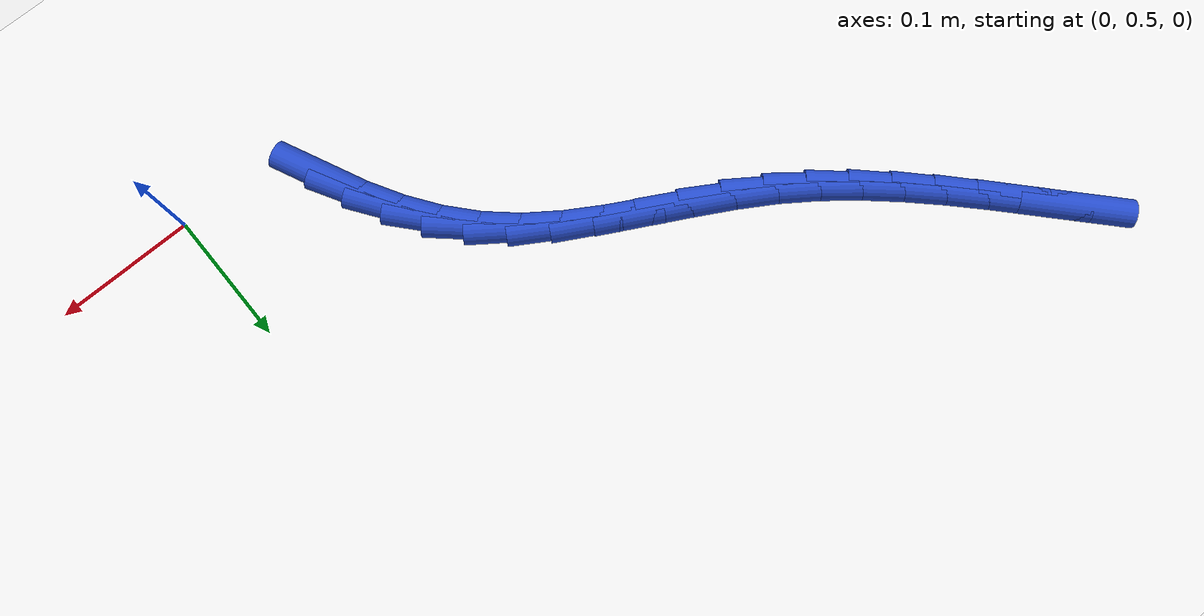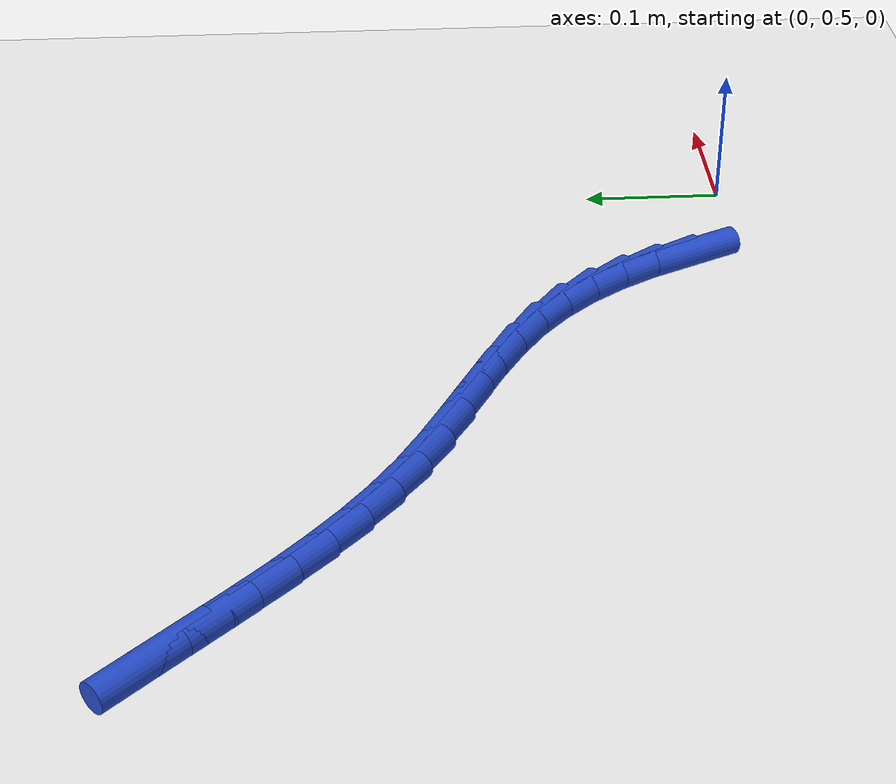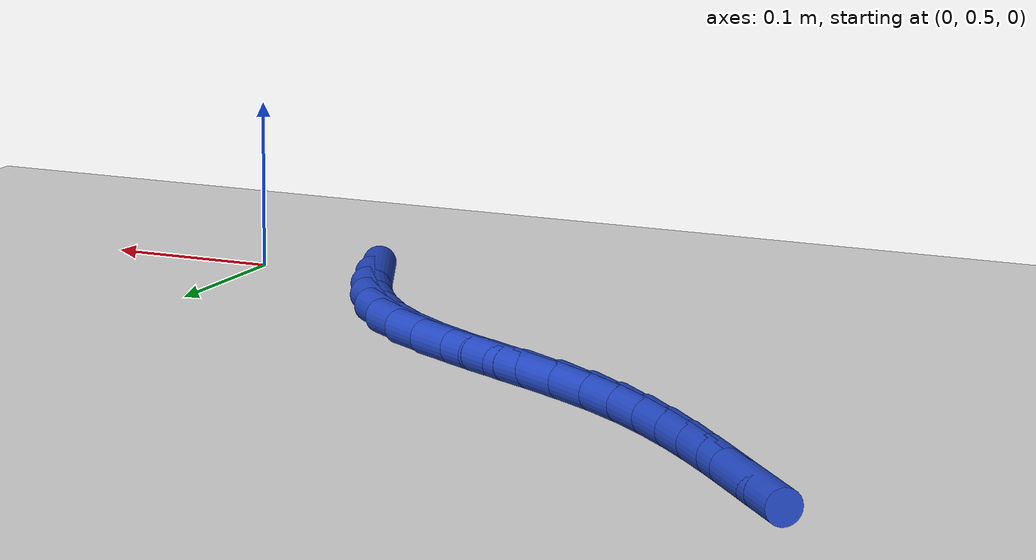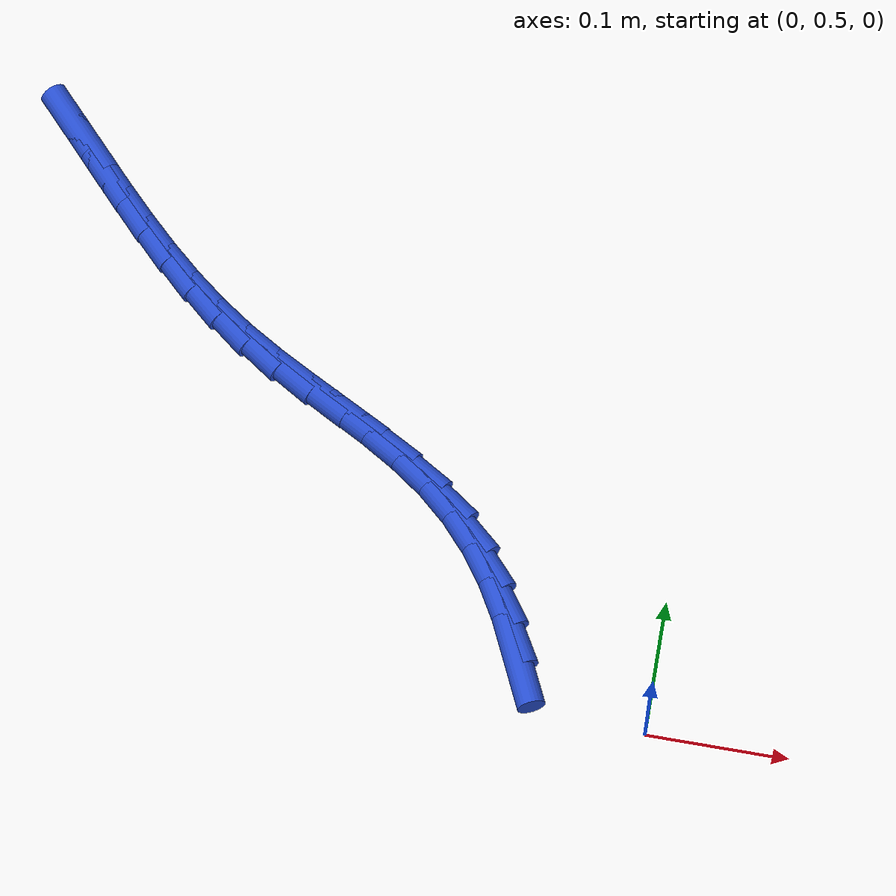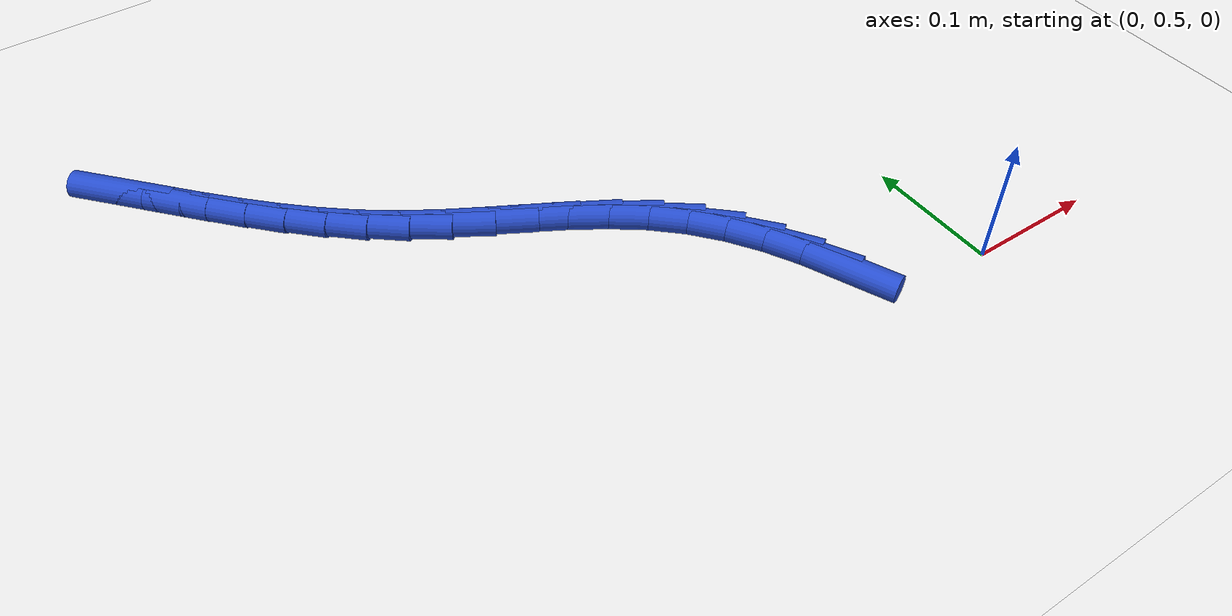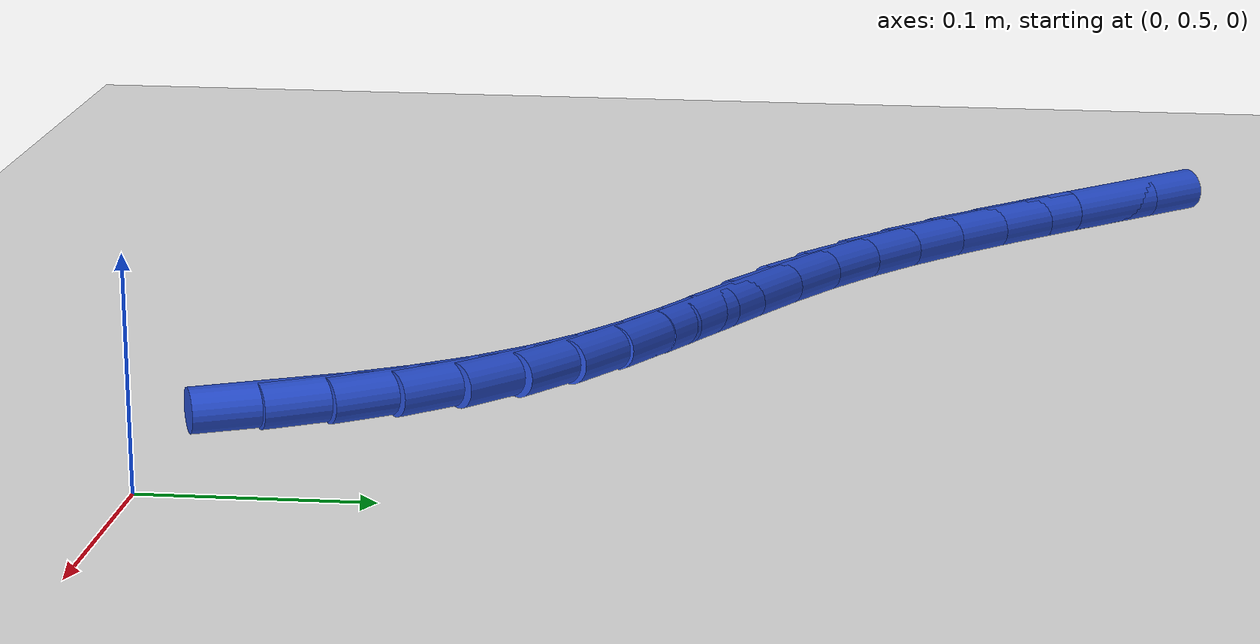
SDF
<sdf version="1.6">
 <world name="default">
  <model name="ground_plane">
   <static>1</static>
   <link name="link">
    <collision name="collision">
     <geometry><plane><normal>0 0 1</normal><size>100 100</size></plane></geometry>
     <surface><friction><ode><mu>100</mu><mu2>50</mu2></ode></friction></surface>
    </collision>
    <visual name="visual">
     <cast_shadows>0</cast_shadows>
     <geometry><plane><normal>0 0 1</normal><size>100 100</size></plane></geometry>
     <material>
      <script><uri>file://media/materials/scripts/gazebo.material</uri><name>Gazebo/WhiteGlow</name></script>
     </material>
    </visual>
   </link>
  </model>
  <model name="line">
   <link name="link_18">
    <pose>-0.09618343486687392 0.539543260138855 0.01 0 1.57 -1.1457751777536347</pose>
    <collision name="collision">
     <geometry><cylinder><radius>0.01</radius><length>0.08</length></cylinder></geometry>
    </collision>
    <visual name="visual">
     <material>
      <script><name>Gazebo/Blue</name><uri>file://media/materials/scripts/gazebo.material</uri></script>
     </material>
     <geometry><cylinder><radius>0.01</radius><length>0.08</length></cylinder></geometry>
    </visual>
   </link>
   <link name="link_19">
    <pose>-0.10826474523844995 0.5662358803674054 0.01 0 1.57 -1.0639589083681769</pose>
    <collision name="collision">
     <geometry><cylinder><radius>0.01</radius><length>0.08</length></cylinder></geometry>
    </collision>
    <visual name="visual">
     <material>
      <script><name>Gazebo/Blue</name><uri>file://media/materials/scripts/gazebo.material</uri></script>
     </material>
     <geometry><cylinder><radius>0.01</radius><length>0.08</length></cylinder></geometry>
    </visual>
   </link>
   <link name="link_20">
    <pose>-0.12223116826294202 0.5913909099742352 0.01 0 1.57 -0.9691251442633072</pose>
    <collision name="collision">
     <geometry><cylinder><radius>0.01</radius><length>0.08</length></cylinder></geometry>
    </collision>
    <visual name="visual">
     <material>
      <script><name>Gazebo/Blue</name><uri>file://media/materials/scripts/gazebo.material</uri></script>
     </material>
     <geometry><cylinder><radius>0.01</radius><length>0.08</length></cylinder></geometry>
    </visual>
   </link>
   <link name="link_21">
    <pose>-0.1383005120816671 0.6147953783051404 0.01 0 1.57 -0.8618440866413085</pose>
    <collision name="collision">
     <geometry><cylinder><radius>0.01</radius><length>0.08</length></cylinder></geometry>
    </collision>
    <visual name="visual">
     <material>
      <script><name>Gazebo/Blue</name><uri>file://media/materials/scripts/gazebo.material</uri></script>
     </material>
     <geometry><cylinder><radius>0.01</radius><length>0.08</length></cylinder></geometry>
    </visual>
   </link>
   <link name="link_22">
    <pose>-0.1566905848359421 0.6362363147059168 0.01 0 1.57 -0.7443963743628462</pose>
    <collision name="collision">
     <geometry><cylinder><radius>0.01</radius><length>0.08</length></cylinder></geometry>
    </collision>
    <visual name="visual">
     <material>
      <script><name>Gazebo/Blue</name><uri>file://media/materials/scripts/gazebo.material</uri></script>
     </material>
     <geometry><cylinder><radius>0.01</radius><length>0.08</length></cylinder></geometry>
    </visual>
   </link>
   <link name="link_23">
    <pose>-0.17761126916861394 0.65550811130373 0.01 0 1.57 -0.6364197757738635</pose>
    <collision name="collision">
     <geometry><cylinder><radius>0.01</radius><length>0.08</length></cylinder></geometry>
    </collision>
    <visual name="visual">
     <material>
      <script><name>Gazebo/Blue</name><uri>file://media/materials/scripts/gazebo.material</uri></script>
     </material>
     <geometry><cylinder><radius>0.01</radius><length>0.08</length></cylinder></geometry>
    </visual>
   </link>
   <link name="link_24">
    <pose>-0.2009196808169959 0.6727328803823608 0.01 0 1.57 -0.561010420184418</pose>
    <collision name="collision">
     <geometry><cylinder><radius>0.01</radius><length>0.08</length></cylinder></geometry>
    </collision>
    <visual name="visual">
     <material>
      <script><name>Gazebo/Blue</name><uri>file://media/materials/scripts/gazebo.material</uri></script>
     </material>
     <geometry><cylinder><radius>0.01</radius><length>0.08</length></cylinder></geometry>
    </visual>
   </link>
   <link name="link_25">
    <pose>-0.22598702359330816 0.6884841459926657 0.01 0 1.57 -0.5172548308809158</pose>
    <collision name="collision">
     <geometry><cylinder><radius>0.01</radius><length>0.08</length></cylinder></geometry>
    </collision>
    <visual name="visual">
     <material>
      <script><name>Gazebo/Blue</name><uri>file://media/materials/scripts/gazebo.material</uri></script>
     </material>
     <geometry><cylinder><radius>0.01</radius><length>0.08</length></cylinder></geometry>
    </visual>
   </link>
   <link name="link_26">
    <pose>-0.2521490878858158 0.7033683312263781 0.01 0 1.57 -0.5027742366577302</pose>
    <collision name="collision">
     <geometry><cylinder><radius>0.01</radius><length>0.08</length></cylinder></geometry>
    </collision>
    <visual name="visual">
     <material>
      <script><name>Gazebo/Blue</name><uri>file://media/materials/scripts/gazebo.material</uri></script>
     </material>
     <geometry><cylinder><radius>0.01</radius><length>0.08</length></cylinder></geometry>
    </visual>
   </link>
   <link name="link_27">
    <pose>-0.2787416640827836 0.7179918591752307 0.01 0 1.57 -0.516484557182896</pose>
    <collision name="collision">
     <geometry><cylinder><radius>0.01</radius><length>0.08</length></cylinder></geometry>
    </collision>
    <visual name="visual">
     <material>
      <script><name>Gazebo/Blue</name><uri>file://media/materials/scripts/gazebo.material</uri></script>
     </material>
     <geometry><cylinder><radius>0.01</radius><length>0.08</length></cylinder></geometry>
    </visual>
   </link>
   <link name="link_28">
    <pose>-0.30510054257247665 0.7329611529309566 0.01 0 1.57 -0.5588358367193917</pose>
    <collision name="collision">
     <geometry><cylinder><radius>0.01</radius><length>0.08</length></cylinder></geometry>
    </collision>
    <visual name="visual">
     <material>
      <script><name>Gazebo/Blue</name><uri>file://media/materials/scripts/gazebo.material</uri></script>
     </material>
     <geometry><cylinder><radius>0.01</radius><length>0.08</length></cylinder></geometry>
    </visual>
   </link>
   <link name="link_29">
    <pose>-0.33056151374428183 0.7488826355842866 0.01 0 1.57 -0.6247029955184475</pose>
    <collision name="collision">
     <geometry><cylinder><radius>0.01</radius><length>0.08</length></cylinder></geometry>
    </collision>
    <visual name="visual">
     <material>
      <script><name>Gazebo/Blue</name><uri>file://media/materials/scripts/gazebo.material</uri></script>
     </material>
     <geometry><cylinder><radius>0.01</radius><length>0.08</length></cylinder></geometry>
    </visual>
   </link>
   <link name="link_30">
    <pose>-0.3546141539956103 0.7662253812732389 0.01 0 1.57 -0.687753033432235</pose>
    <collision name="collision">
     <geometry><cylinder><radius>0.01</radius><length>0.08</length></cylinder></geometry>
    </collision>
    <visual name="visual">
     <material>
      <script><name>Gazebo/Blue</name><uri>file://media/materials/scripts/gazebo.material</uri></script>
     </material>
     <geometry><cylinder><radius>0.01</radius><length>0.08</length></cylinder></geometry>
    </visual>
   </link>
   <link name="link_31">
    <pose>-0.37735960770271954 0.7849122621601992 0.01 0 1.57 -0.7402997913277448</pose>
    <collision name="collision">
     <geometry><cylinder><radius>0.01</radius><length>0.08</length></cylinder></geometry>
    </collision>
    <visual name="visual">
     <material>
      <script><name>Gazebo/Blue</name><uri>file://media/materials/scripts/gazebo.material</uri></script>
     </material>
     <geometry><cylinder><radius>0.01</radius><length>0.08</length></cylinder></geometry>
    </visual>
   </link>
   <link name="link_32">
    <pose>-0.39905102241437884 0.8047303937361787 0.01 0 1.57 -0.7816980474084336</pose>
    <collision name="collision">
     <geometry><cylinder><radius>0.01</radius><length>0.08</length></cylinder></geometry>
    </collision>
    <visual name="visual">
     <material>
      <script><name>Gazebo/Blue</name><uri>file://media/materials/scripts/gazebo.material</uri></script>
     </material>
     <geometry><cylinder><radius>0.01</radius><length>0.08</length></cylinder></geometry>
    </visual>
   </link>
   <link name="link_33">
    <pose>-0.4199415456793574 0.825466891492188 0.01 0 1.57 -0.8116983417721163</pose>
    <collision name="collision">
     <geometry><cylinder><radius>0.01</radius><length>0.08</length></cylinder></geometry>
    </collision>
    <visual name="visual">
     <material>
      <script><name>Gazebo/Blue</name><uri>file://media/materials/scripts/gazebo.material</uri></script>
     </material>
     <geometry><cylinder><radius>0.01</radius><length>0.08</length></cylinder></geometry>
    </visual>
   </link>
   <link name="link_34">
    <pose>-0.440284325046424 0.8469088709192376 0.01 0 1.57 -0.8303005381225971</pose>
    <collision name="collision">
     <geometry><cylinder><radius>0.01</radius><length>0.08</length></cylinder></geometry>
    </collision>
    <visual name="visual">
     <material>
      <script><name>Gazebo/Blue</name><uri>file://media/materials/scripts/gazebo.material</uri></script>
     </material>
     <geometry><cylinder><radius>0.01</radius><length>0.08</length></cylinder></geometry>
    </visual>
   </link>
   <link name="link_35">
    <pose>-0.46033250806434794 0.8688434475083382 0.01 0 1.57 -0.8376362777605216</pose>
    <collision name="collision">
     <geometry><cylinder><radius>0.01</radius><length>0.08</length></cylinder></geometry>
    </collision>
    <visual name="visual">
     <material>
      <script><name>Gazebo/Blue</name><uri>file://media/materials/scripts/gazebo.material</uri></script>
     </material>
     <geometry><cylinder><radius>0.01</radius><length>0.08</length></cylinder></geometry>
    </visual>
   </link>
   <link name="link_36">
    <pose>-0.4803392422818983 0.8910577367505006 0.01 0 1.57 -0.8338943730259506</pose>
    <collision name="collision">
     <geometry><cylinder><radius>0.01</radius><length>0.08</length></cylinder></geometry>
    </collision>
    <visual name="visual">
     <material>
      <script><name>Gazebo/Blue</name><uri>file://media/materials/scripts/gazebo.material</uri></script>
     </material>
     <geometry><cylinder><radius>0.01</radius><length>0.08</length></cylinder></geometry>
    </visual>
   </link>
  </model>
 </world>
</sdf>
